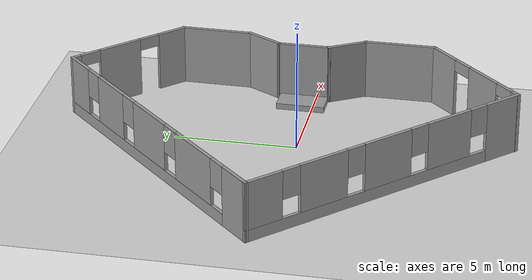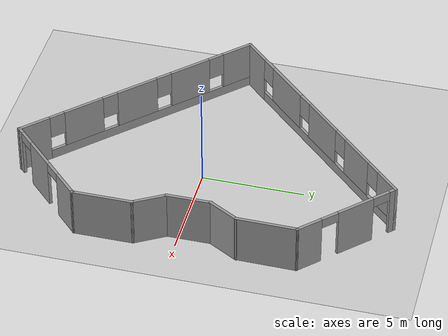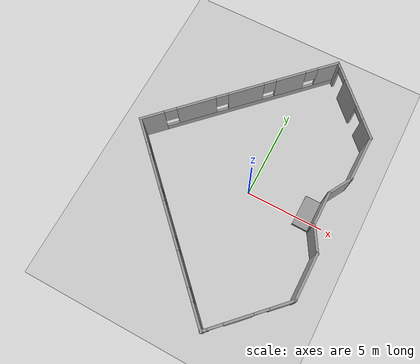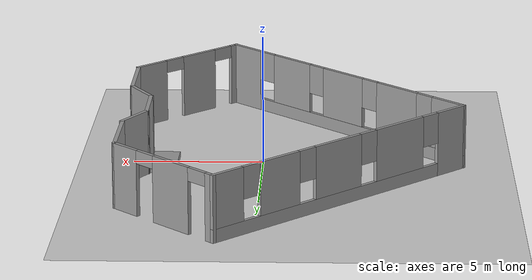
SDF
<sdf version="1.6">
 <world name="default">
  <light name="sun" type="directional">
   <pose>0 0 10 0 -0 0</pose>
   <diffuse>0.8 0.8 0.8 1</diffuse>
   <specular>0.2 0.2 0.2 1</specular>
   <attenuation>
    <range>1000</range>
    <constant>0.9</constant>
    <linear>0.01</linear>
    <quadratic>0.001</quadratic>
   </attenuation>
   <direction>-0.5 0.1 -0.9</direction>
  </light>
  <model name="ground_plane">
   <static>1</static>
   <link name="link">
    <collision name="collision">
     <geometry><plane><normal>0 0 1</normal><size>100 100</size></plane></geometry>
     <surface><friction><ode><mu>100</mu><mu2>50</mu2></ode></friction></surface>
    </collision>
    <visual name="visual">
     <cast_shadows>0</cast_shadows>
     <geometry><plane><normal>0 0 1</normal><size>100 100</size></plane></geometry>
     <material>
      <script><uri>file://media/materials/scripts/gazebo.material</uri><name>Gazebo/Grey</name></script>
     </material>
    </visual>
   </link>
  </model>
  <gravity>0 0 -9.8</gravity>
  <magnetic_field>6e-06 2.3e-05 -4.2e-05</magnetic_field>
  <atmosphere type="adiabatic"/>
  <physics name="default_physics" default="0" type="ode">
   <max_step_size>0.001</max_step_size>
   <real_time_factor>1</real_time_factor>
   <real_time_update_rate>1000</real_time_update_rate>
  </physics>
  <scene><ambient>0.4 0.4 0.4 1</ambient><background>0.7 0.7 0.7 1</background><shadows>1</shadows></scene>
  <spherical_coordinates>
   <surface_model>EARTH_WGS84</surface_model>
   <latitude_deg>0</latitude_deg>
   <longitude_deg>0</longitude_deg>
   <elevation>0</elevation>
   <heading_deg>0</heading_deg>
  </spherical_coordinates>
  <model name="delta">
   <pose>-1.24211 0.488562 0 0 -0 0</pose>
   <link name="Wall_11">
    <pose>4.55537 -7.19481 0 0 -0 0.785398</pose>
    <visual name="Wall_11_Visual_0">
     <pose>-2.53108 0 1.25 0 -0 0</pose>
     <geometry><box><size>0.437834 0.15 2.5</size></box></geometry>
     <material>
      <script><uri>file://media/materials/scripts/gazebo.material</uri><name>Gazebo/Grey</name></script>
      <ambient>1 1 1 1</ambient>
     </material>
    </visual>
    <collision name="Wall_11_Collision_0">
     <geometry><box><size>0.437834 0.15 2.5</size></box></geometry>
     <pose>-2.53108 0 1.25 0 -0 0</pose>
    </collision>
    <visual name="Wall_11_Visual_1">
     <pose>-0.546448 0 1.25 0 -0 0</pose>
     <geometry><box><size>1.73144 0.15 2.5</size></box></geometry>
     <material>
      <script><uri>file://media/materials/scripts/gazebo.material</uri><name>Gazebo/Grey</name></script>
      <ambient>1 1 1 1</ambient>
     </material>
    </visual>
    <collision name="Wall_11_Collision_1">
     <geometry><box><size>1.73144 0.15 2.5</size></box></geometry>
     <pose>-0.546448 0 1.25 0 -0 0</pose>
    </collision>
    <visual name="Wall_11_Visual_2">
     <pose>1.98463 0 1.25 0 -0 0</pose>
     <geometry><box><size>1.53073 0.15 2.5</size></box></geometry>
     <material>
      <script><uri>file://media/materials/scripts/gazebo.material</uri><name>Gazebo/Grey</name></script>
      <ambient>1 1 1 1</ambient>
     </material>
    </visual>
    <collision name="Wall_11_Collision_2">
     <geometry><box><size>1.53073 0.15 2.5</size></box></geometry>
     <pose>1.98463 0 1.25 0 -0 0</pose>
    </collision>
    <visual name="Wall_11_Visual_3">
     <pose>-1.86217 0 2.25 0 -0 0</pose>
     <geometry><box><size>0.9 0.15 0.5</size></box></geometry>
     <material>
      <script><uri>file://media/materials/scripts/gazebo.material</uri><name>Gazebo/Grey</name></script>
      <ambient>1 1 1 1</ambient>
     </material>
    </visual>
    <collision name="Wall_11_Collision_3">
     <geometry><box><size>0.9 0.15 0.5</size></box></geometry>
     <pose>-1.86217 0 2.25 0 -0 0</pose>
    </collision>
    <visual name="Wall_11_Visual_4">
     <pose>0.76927 0 2.25 0 -0 0</pose>
     <geometry><box><size>0.9 0.15 0.5</size></box></geometry>
     <material>
      <script><uri>file://media/materials/scripts/gazebo.material</uri><name>Gazebo/Grey</name></script>
      <ambient>1 1 1 1</ambient>
     </material>
    </visual>
    <collision name="Wall_11_Collision_4">
     <geometry><box><size>0.9 0.15 0.5</size></box></geometry>
     <pose>0.76927 0 2.25 0 -0 0</pose>
    </collision>
   </link>
   <link name="Wall_13">
    <pose>4.53095 7.19481 0 0 0 -0.785398</pose>
    <visual name="Wall_13_Visual_0">
     <pose>-2.53701 0 1.25 0 -0 0</pose>
     <geometry><box><size>0.42599 0.15 2.5</size></box></geometry>
     <material>
      <script><uri>file://media/materials/scripts/gazebo.material</uri><name>Gazebo/Grey</name></script>
      <ambient>1 1 1 1</ambient>
     </material>
    </visual>
    <collision name="Wall_13_Collision_0">
     <geometry><box><size>0.42599 0.15 2.5</size></box></geometry>
     <pose>-2.53701 0 1.25 0 -0 0</pose>
    </collision>
    <visual name="Wall_13_Visual_1">
     <pose>-0.468013 0 1.25 0 -0 0</pose>
     <geometry><box><size>1.91199 0.15 2.5</size></box></geometry>
     <material>
      <script><uri>file://media/materials/scripts/gazebo.material</uri><name>Gazebo/Grey</name></script>
      <ambient>1 1 1 1</ambient>
     </material>
    </visual>
    <collision name="Wall_13_Collision_1">
     <geometry><box><size>1.91199 0.15 2.5</size></box></geometry>
     <pose>-0.468013 0 1.25 0 -0 0</pose>
    </collision>
    <visual name="Wall_13_Visual_2">
     <pose>2.06899 0 1.25 0 -0 0</pose>
     <geometry><box><size>1.36202 0.15 2.5</size></box></geometry>
     <material>
      <script><uri>file://media/materials/scripts/gazebo.material</uri><name>Gazebo/Grey</name></script>
      <ambient>1 1 1 1</ambient>
     </material>
    </visual>
    <collision name="Wall_13_Collision_2">
     <geometry><box><size>1.36202 0.15 2.5</size></box></geometry>
     <pose>2.06899 0 1.25 0 -0 0</pose>
    </collision>
    <visual name="Wall_13_Visual_3">
     <pose>-1.87401 0 2.25 0 -0 0</pose>
     <geometry><box><size>0.9 0.15 0.5</size></box></geometry>
     <material>
      <script><uri>file://media/materials/scripts/gazebo.material</uri><name>Gazebo/Grey</name></script>
      <ambient>1 1 1 1</ambient>
     </material>
    </visual>
    <collision name="Wall_13_Collision_3">
     <geometry><box><size>0.9 0.15 0.5</size></box></geometry>
     <pose>-1.87401 0 2.25 0 -0 0</pose>
    </collision>
    <visual name="Wall_13_Visual_4">
     <pose>0.937983 0 2.25 0 -0 0</pose>
     <geometry><box><size>0.9 0.15 0.5</size></box></geometry>
     <material>
      <script><uri>file://media/materials/scripts/gazebo.material</uri><name>Gazebo/Grey</name></script>
      <ambient>1 1 1 1</ambient>
     </material>
    </visual>
    <collision name="Wall_13_Collision_4">
     <geometry><box><size>0.9 0.15 0.5</size></box></geometry>
     <pose>0.937983 0 2.25 0 -0 0</pose>
    </collision>
   </link>
   <link name="Wall_15">
    <collision name="Wall_15_Collision">
     <geometry><box><size>3 0.15 2.5</size></box></geometry>
     <pose>0 0 1.25 0 -0 0</pose>
    </collision>
    <visual name="Wall_15_Visual">
     <pose>0 0 1.25 0 -0 0</pose>
     <geometry><box><size>3 0.15 2.5</size></box></geometry>
     <material>
      <script><uri>file://media/materials/scripts/gazebo.material</uri><name>Gazebo/Grey</name></script>
      <ambient>1 1 1 1</ambient>
     </material>
    </visual>
    <pose>6.40421 3.8783 0 0 0 -1.58361</pose>
   </link>
   <link name="Wall_17">
    <collision name="Wall_17_Collision">
     <geometry><box><size>3 0.15 2.5</size></box></geometry>
     <pose>0 0 1.25 0 -0 0</pose>
    </collision>
    <visual name="Wall_17_Visual">
     <pose>0 0 1.25 0 -0 0</pose>
     <geometry><box><size>3 0.15 2.5</size></box></geometry>
     <material>
      <script><uri>file://media/materials/scripts/gazebo.material</uri><name>Gazebo/Grey</name></script>
      <ambient>1 1 1 1</ambient>
     </material>
    </visual>
    <pose>6.44688 -3.8783 0 0 -0 1.5708</pose>
   </link>
   <link name="Wall_20">
    <collision name="Wall_20_Collision">
     <geometry><box><size>2.25 0.15 2.5</size></box></geometry>
     <pose>0 0 1.25 0 -0 0</pose>
    </collision>
    <visual name="Wall_20_Visual">
     <pose>0 0 1.25 0 -0 0</pose>
     <geometry><box><size>2.25 0.15 2.5</size></box></geometry>
     <material>
      <script><uri>file://media/materials/scripts/gazebo.material</uri><name>Gazebo/Grey</name></script>
      <ambient>1 1 1 1</ambient>
     </material>
    </visual>
    <pose>5.60421 0.01766 0 0 0 -1.5708</pose>
   </link>
   <link name="Wall_22">
    <collision name="Wall_22_Collision">
     <geometry><box><size>1.80204 0.15 2.5</size></box></geometry>
     <pose>0 0 1.25 0 -0 0</pose>
    </collision>
    <visual name="Wall_22_Visual">
     <pose>0 0 1.25 0 -0 0</pose>
     <geometry><box><size>1.80204 0.15 2.5</size></box></geometry>
     <material>
      <script><uri>file://media/materials/scripts/gazebo.material</uri><name>Gazebo/Grey</name></script>
      <ambient>1 1 1 1</ambient>
     </material>
    </visual>
    <pose>6.02554 -1.74282 0 0 0 -1.03552</pose>
   </link>
   <link name="Wall_24">
    <collision name="Wall_24_Collision">
     <geometry><box><size>1.75 0.15 2.5</size></box></geometry>
     <pose>0 0 1.25 0 -0 0</pose>
    </collision>
    <visual name="Wall_24_Visual">
     <pose>0 0 1.25 0 -0 0</pose>
     <geometry><box><size>1.75 0.15 2.5</size></box></geometry>
     <material>
      <script><uri>file://media/materials/scripts/gazebo.material</uri><name>Gazebo/Grey</name></script>
      <ambient>1 1 1 1</ambient>
     </material>
    </visual>
    <pose>6.00421 1.76048 0 0 -0 1.0472</pose>
   </link>
   <link name="Wall_8">
    <pose>-1.8793 -4.54316 0 0 -0 2.35887</pose>
    <visual name="Wall_8_Visual_0">
     <pose>-5.67843 0 1.25 0 -0 0</pose>
     <geometry><box><size>1.67772 0.15 2.5</size></box></geometry>
     <material>
      <script><uri>file://media/materials/scripts/gazebo.material</uri><name>Gazebo/Grey</name></script>
      <ambient>1 1 1 1</ambient>
     </material>
    </visual>
    <collision name="Wall_8_Collision_0">
     <geometry><box><size>1.67772 0.15 2.5</size></box></geometry>
     <pose>-5.67843 0 1.25 0 -0 0</pose>
    </collision>
    <visual name="Wall_8_Visual_1">
     <pose>0.838862 0 0.25 0 -0 0</pose>
     <geometry><box><size>11.3569 0.15 0.5</size></box></geometry>
     <material>
      <script><uri>file://media/materials/scripts/gazebo.material</uri><name>Gazebo/Grey</name></script>
      <ambient>1 1 1 1</ambient>
     </material>
    </visual>
    <collision name="Wall_8_Collision_1">
     <geometry><box><size>11.3569 0.15 0.5</size></box></geometry>
     <pose>0.838862 0 0.25 0 -0 0</pose>
    </collision>
    <visual name="Wall_8_Visual_2">
     <pose>-2.98871 0 1.5 0 -0 0</pose>
     <geometry><box><size>2.10171 0.15 2</size></box></geometry>
     <material>
      <script><uri>file://media/materials/scripts/gazebo.material</uri><name>Gazebo/Grey</name></script>
      <ambient>1 1 1 1</ambient>
     </material>
    </visual>
    <collision name="Wall_8_Collision_2">
     <geometry><box><size>2.10171 0.15 2</size></box></geometry>
     <pose>-2.98871 0 1.5 0 -0 0</pose>
    </collision>
    <visual name="Wall_8_Visual_3">
     <pose>-0.036151 0 1.5 0 -0 0</pose>
     <geometry><box><size>2.2034 0.15 2</size></box></geometry>
     <material>
      <script><uri>file://media/materials/scripts/gazebo.material</uri><name>Gazebo/Grey</name></script>
      <ambient>1 1 1 1</ambient>
     </material>
    </visual>
    <collision name="Wall_8_Collision_3">
     <geometry><box><size>2.2034 0.15 2</size></box></geometry>
     <pose>-0.036151 0 1.5 0 -0 0</pose>
    </collision>
    <visual name="Wall_8_Visual_4">
     <pose>2.95024 0 1.5 0 -0 0</pose>
     <geometry><box><size>2.16939 0.15 2</size></box></geometry>
     <material>
      <script><uri>file://media/materials/scripts/gazebo.material</uri><name>Gazebo/Grey</name></script>
      <ambient>1 1 1 1</ambient>
     </material>
    </visual>
    <collision name="Wall_8_Collision_4">
     <geometry><box><size>2.16939 0.15 2</size></box></geometry>
     <pose>2.95024 0 1.5 0 -0 0</pose>
    </collision>
    <visual name="Wall_8_Visual_5">
     <pose>5.67611 0 1.5 0 -0 0</pose>
     <geometry><box><size>1.68236 0.15 2</size></box></geometry>
     <material>
      <script><uri>file://media/materials/scripts/gazebo.material</uri><name>Gazebo/Grey</name></script>
      <ambient>1 1 1 1</ambient>
     </material>
    </visual>
    <collision name="Wall_8_Collision_5">
     <geometry><box><size>1.68236 0.15 2</size></box></geometry>
     <pose>5.67611 0 1.5 0 -0 0</pose>
    </collision>
    <visual name="Wall_8_Visual_6">
     <pose>-4.43957 0 1.9 0 -0 0</pose>
     <geometry><box><size>0.8 0.15 1.2</size></box></geometry>
     <material>
      <script><uri>file://media/materials/scripts/gazebo.material</uri><name>Gazebo/Grey</name></script>
      <ambient>1 1 1 1</ambient>
     </material>
    </visual>
    <collision name="Wall_8_Collision_6">
     <geometry><box><size>0.8 0.15 1.2</size></box></geometry>
     <pose>-4.43957 0 1.9 0 -0 0</pose>
    </collision>
    <visual name="Wall_8_Visual_7">
     <pose>-1.53785 0 1.9 0 -0 0</pose>
     <geometry><box><size>0.8 0.15 1.2</size></box></geometry>
     <material>
      <script><uri>file://media/materials/scripts/gazebo.material</uri><name>Gazebo/Grey</name></script>
      <ambient>1 1 1 1</ambient>
     </material>
    </visual>
    <collision name="Wall_8_Collision_7">
     <geometry><box><size>0.8 0.15 1.2</size></box></geometry>
     <pose>-1.53785 0 1.9 0 -0 0</pose>
    </collision>
    <visual name="Wall_8_Visual_8">
     <pose>1.46555 0 1.9 0 -0 0</pose>
     <geometry><box><size>0.8 0.15 1.2</size></box></geometry>
     <material>
      <script><uri>file://media/materials/scripts/gazebo.material</uri><name>Gazebo/Grey</name></script>
      <ambient>1 1 1 1</ambient>
     </material>
    </visual>
    <collision name="Wall_8_Collision_8">
     <geometry><box><size>0.8 0.15 1.2</size></box></geometry>
     <pose>1.46555 0 1.9 0 -0 0</pose>
    </collision>
    <visual name="Wall_8_Visual_9">
     <pose>4.43493 0 1.9 0 -0 0</pose>
     <geometry><box><size>0.8 0.15 1.2</size></box></geometry>
     <material>
      <script><uri>file://media/materials/scripts/gazebo.material</uri><name>Gazebo/Grey</name></script>
      <ambient>1 1 1 1</ambient>
     </material>
    </visual>
    <collision name="Wall_8_Collision_9">
     <geometry><box><size>0.8 0.15 1.2</size></box></geometry>
     <pose>4.43493 0 1.9 0 -0 0</pose>
    </collision>
   </link>
   <link name="Wall_9">
    <pose>-1.90372 4.54316 0 0 -0 0.785398</pose>
    <visual name="Wall_9_Visual_0">
     <pose>-5.72253 0 1.25 0 -0 0</pose>
     <geometry><box><size>1.55494 0.15 2.5</size></box></geometry>
     <material>
      <script><uri>file://media/materials/scripts/gazebo.material</uri><name>Gazebo/Grey</name></script>
      <ambient>1 1 1 1</ambient>
     </material>
    </visual>
    <collision name="Wall_9_Collision_0">
     <geometry><box><size>1.55494 0.15 2.5</size></box></geometry>
     <pose>-5.72253 0 1.25 0 -0 0</pose>
    </collision>
    <visual name="Wall_9_Visual_1">
     <pose>0.777471 0 0.25 0 -0 0</pose>
     <geometry><box><size>11.4451 0.15 0.5</size></box></geometry>
     <material>
      <script><uri>file://media/materials/scripts/gazebo.material</uri><name>Gazebo/Grey</name></script>
      <ambient>1 1 1 1</ambient>
     </material>
    </visual>
    <collision name="Wall_9_Collision_1">
     <geometry><box><size>11.4451 0.15 0.5</size></box></geometry>
     <pose>0.777471 0 0.25 0 -0 0</pose>
    </collision>
    <visual name="Wall_9_Visual_2">
     <pose>-2.89154 0 1.5 0 -0 0</pose>
     <geometry><box><size>2.50703 0.15 2</size></box></geometry>
     <material>
      <script><uri>file://media/materials/scripts/gazebo.material</uri><name>Gazebo/Grey</name></script>
      <ambient>1 1 1 1</ambient>
     </material>
    </visual>
    <collision name="Wall_9_Collision_2">
     <geometry><box><size>2.50703 0.15 2</size></box></geometry>
     <pose>-2.89154 0 1.5 0 -0 0</pose>
    </collision>
    <visual name="Wall_9_Visual_3">
     <pose>0.32265 0 1.5 0 -0 0</pose>
     <geometry><box><size>2.32136 0.15 2</size></box></geometry>
     <material>
      <script><uri>file://media/materials/scripts/gazebo.material</uri><name>Gazebo/Grey</name></script>
      <ambient>1 1 1 1</ambient>
     </material>
    </visual>
    <collision name="Wall_9_Collision_3">
     <geometry><box><size>2.32136 0.15 2</size></box></geometry>
     <pose>0.32265 0 1.5 0 -0 0</pose>
    </collision>
    <visual name="Wall_9_Visual_4">
     <pose>3.25964 0 1.5 0 -0 0</pose>
     <geometry><box><size>1.95263 0.15 2</size></box></geometry>
     <material>
      <script><uri>file://media/materials/scripts/gazebo.material</uri><name>Gazebo/Grey</name></script>
      <ambient>1 1 1 1</ambient>
     </material>
    </visual>
    <collision name="Wall_9_Collision_4">
     <geometry><box><size>1.95263 0.15 2</size></box></geometry>
     <pose>3.25964 0 1.5 0 -0 0</pose>
    </collision>
    <visual name="Wall_9_Visual_5">
     <pose>5.76798 0 1.5 0 -0 0</pose>
     <geometry><box><size>1.46404 0.15 2</size></box></geometry>
     <material>
      <script><uri>file://media/materials/scripts/gazebo.material</uri><name>Gazebo/Grey</name></script>
      <ambient>1 1 1 1</ambient>
     </material>
    </visual>
    <collision name="Wall_9_Collision_5">
     <geometry><box><size>1.46404 0.15 2</size></box></geometry>
     <pose>5.76798 0 1.5 0 -0 0</pose>
    </collision>
    <visual name="Wall_9_Visual_6">
     <pose>-4.54506 0 1.9 0 -0 0</pose>
     <geometry><box><size>0.8 0.15 1.2</size></box></geometry>
     <material>
      <script><uri>file://media/materials/scripts/gazebo.material</uri><name>Gazebo/Grey</name></script>
      <ambient>1 1 1 1</ambient>
     </material>
    </visual>
    <collision name="Wall_9_Collision_6">
     <geometry><box><size>0.8 0.15 1.2</size></box></geometry>
     <pose>-4.54506 0 1.9 0 -0 0</pose>
    </collision>
    <visual name="Wall_9_Visual_7">
     <pose>-1.23803 0 1.9 0 -0 0</pose>
     <geometry><box><size>0.8 0.15 1.2</size></box></geometry>
     <material>
      <script><uri>file://media/materials/scripts/gazebo.material</uri><name>Gazebo/Grey</name></script>
      <ambient>1 1 1 1</ambient>
     </material>
    </visual>
    <collision name="Wall_9_Collision_7">
     <geometry><box><size>0.8 0.15 1.2</size></box></geometry>
     <pose>-1.23803 0 1.9 0 -0 0</pose>
    </collision>
    <visual name="Wall_9_Visual_8">
     <pose>1.88333 0 1.9 0 -0 0</pose>
     <geometry><box><size>0.8 0.15 1.2</size></box></geometry>
     <material>
      <script><uri>file://media/materials/scripts/gazebo.material</uri><name>Gazebo/Grey</name></script>
      <ambient>1 1 1 1</ambient>
     </material>
    </visual>
    <collision name="Wall_9_Collision_8">
     <geometry><box><size>0.8 0.15 1.2</size></box></geometry>
     <pose>1.88333 0 1.9 0 -0 0</pose>
    </collision>
    <visual name="Wall_9_Visual_9">
     <pose>4.63596 0 1.9 0 -0 0</pose>
     <geometry><box><size>0.8 0.15 1.2</size></box></geometry>
     <material>
      <script><uri>file://media/materials/scripts/gazebo.material</uri><name>Gazebo/Grey</name></script>
      <ambient>1 1 1 1</ambient>
     </material>
    </visual>
    <collision name="Wall_9_Collision_9">
     <geometry><box><size>0.8 0.15 1.2</size></box></geometry>
     <pose>4.63596 0 1.9 0 -0 0</pose>
    </collision>
   </link>
   <static>1</static>
  </model>
  <model name="palco">
   <link name="link">
    <inertial>
     <mass>1</mass>
     <inertia>
      <ixx>0.166667</ixx>
      <ixy>0</ixy>
      <ixz>0</ixz>
      <iyy>0.166667</iyy>
      <iyz>0</iyz>
      <izz>0.166667</izz>
     </inertia>
    </inertial>
    <pose>-0.079846 0.626372 -0.34276 0 -0 0</pose>
    <visual name="visual">
     <geometry><box><size>1 2 0.25</size></box></geometry>
     <material>
      <script><name>Gazebo/Grey</name><uri>file://media/materials/scripts/gazebo.material</uri></script>
      <shader type="vertex"><normal_map>__default__</normal_map></shader>
      <ambient>0.3 0.3 0.3 1</ambient>
      <diffuse>0.7 0.7 0.7 1</diffuse>
      <specular>0.01 0.01 0.01 1</specular>
      <emissive>0 0 0 1</emissive>
     </material>
    </visual>
    <collision name="collision">
     <geometry><box><size>1 2 0.25</size></box></geometry>
     <surface>
      <friction>
       <ode><mu>1</mu><mu2>1</mu2><fdir1>0 0 0</fdir1><slip1>0</slip1><slip2>0</slip2></ode>
       <torsional>
        <coefficient>1</coefficient>
        <patch_radius>0</patch_radius>
        <surface_radius>0</surface_radius>
        <use_patch_radius>1</use_patch_radius>
        <ode><slip>0</slip></ode>
       </torsional>
      </friction>
      <bounce><restitution_coefficient>0</restitution_coefficient><threshold>1e+06</threshold></bounce>
      <contact>
       <collide_without_contact>0</collide_without_contact>
       <collide_without_contact_bitmask>1</collide_without_contact_bitmask>
       <collide_bitmask>1</collide_bitmask>
       <ode>
        <soft_cfm>0</soft_cfm>
        <soft_erp>0.2</soft_erp>
        <kp>1e+13</kp>
        <kd>1</kd>
        <max_vel>0.01</max_vel>
        <min_depth>0</min_depth>
       </ode>
       <bullet>
        <split_impulse>1</split_impulse>
        <split_impulse_penetration_threshold>-0.01</split_impulse_penetration_threshold>
        <soft_cfm>0</soft_cfm>
        <soft_erp>0.2</soft_erp>
        <kp>1e+13</kp>
        <kd>1</kd>
       </bullet>
      </contact>
     </surface>
    </collision>
   </link>
   <static>0</static>
   <pose>3.68718 1.09316 0.46776 0 -0 3.12949</pose>
  </model>
 </world>
</sdf>
